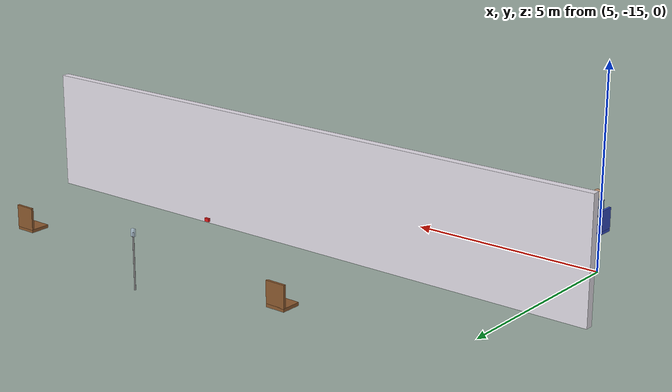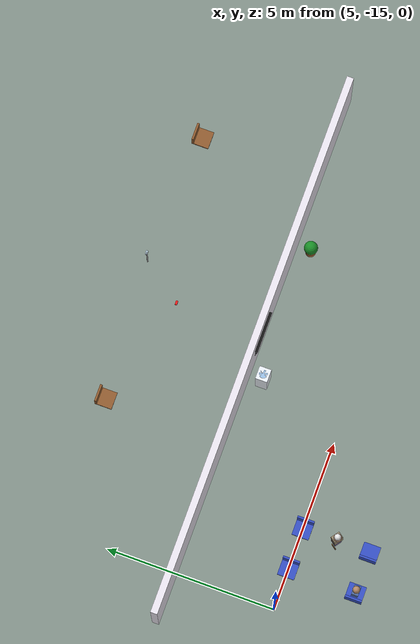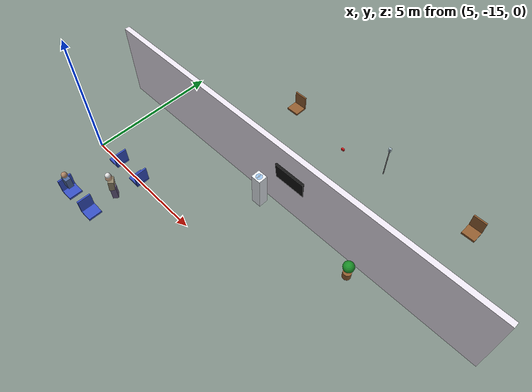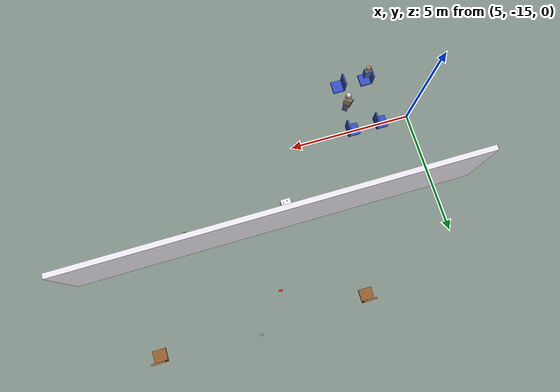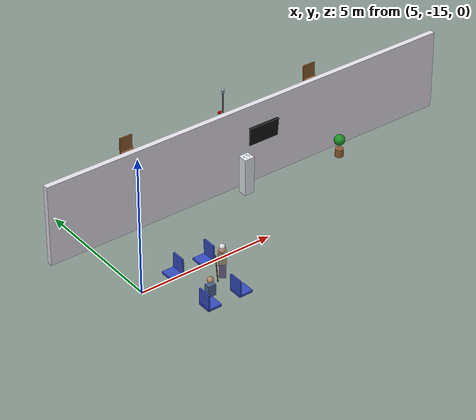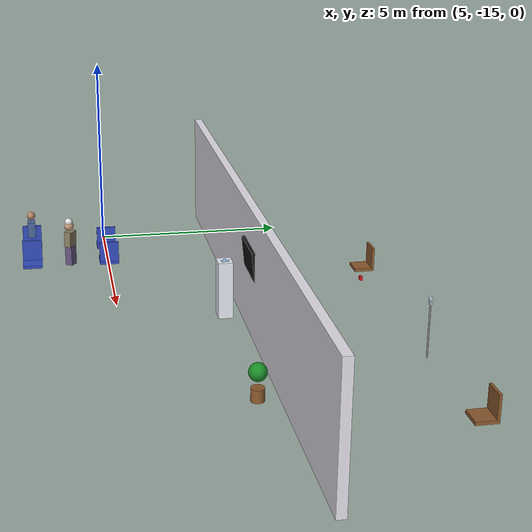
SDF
<sdf version="1.9">
 <world name="hospital">
  <model name="ch2">
   <static>true</static>
   <pose>6.2 -17 0.22 0 0 0</pose>
   <link name="l">
    <collision name="c"><geometry><box><size>0.55 0.55 0.44</size></box></geometry></collision>
    <visual name="s">
     <geometry><box><size>0.5 0.5 0.08</size></box></geometry>
     <material><ambient>0.2 0.3 0.75 1</ambient><diffuse>0.2 0.3 0.75 1</diffuse></material>
    </visual>
    <visual name="d">
     <pose>-0.22 0 0.3 0 0 0</pose>
     <geometry><box><size>0.06 0.5 0.55</size></box></geometry>
     <material><ambient>0.2 0.3 0.75 1</ambient><diffuse>0.2 0.3 0.75 1</diffuse></material>
    </visual>
   </link>
  </model>
  <model name="ch3">
   <static>true</static>
   <pose>7.4 -17 0.22 0 0 0</pose>
   <link name="l">
    <collision name="c"><geometry><box><size>0.55 0.55 0.44</size></box></geometry></collision>
    <visual name="s">
     <geometry><box><size>0.5 0.5 0.08</size></box></geometry>
     <material><ambient>0.2 0.3 0.75 1</ambient><diffuse>0.2 0.3 0.75 1</diffuse></material>
    </visual>
    <visual name="d">
     <pose>-0.22 0 0.3 0 0 0</pose>
     <geometry><box><size>0.06 0.5 0.55</size></box></geometry>
     <material><ambient>0.2 0.3 0.75 1</ambient><diffuse>0.2 0.3 0.75 1</diffuse></material>
    </visual>
   </link>
  </model>
  <model name="ch5">
   <static>true</static>
   <pose>6.2 -15 0.22 0 0 0</pose>
   <link name="l">
    <collision name="c"><geometry><box><size>0.55 0.55 0.44</size></box></geometry></collision>
    <visual name="s">
     <geometry><box><size>0.5 0.5 0.08</size></box></geometry>
     <material><ambient>0.2 0.3 0.75 1</ambient><diffuse>0.2 0.3 0.75 1</diffuse></material>
    </visual>
    <visual name="d">
     <pose>0.22 0 0.3 0 0 0</pose>
     <geometry><box><size>0.06 0.5 0.55</size></box></geometry>
     <material><ambient>0.2 0.3 0.75 1</ambient><diffuse>0.2 0.3 0.75 1</diffuse></material>
    </visual>
   </link>
  </model>
  <model name="ch6">
   <static>true</static>
   <pose>7.4 -15 0.22 0 0 0</pose>
   <link name="l">
    <collision name="c"><geometry><box><size>0.55 0.55 0.44</size></box></geometry></collision>
    <visual name="s">
     <geometry><box><size>0.5 0.5 0.08</size></box></geometry>
     <material><ambient>0.2 0.3 0.75 1</ambient><diffuse>0.2 0.3 0.75 1</diffuse></material>
    </visual>
    <visual name="d">
     <pose>0.22 0 0.3 0 0 0</pose>
     <geometry><box><size>0.06 0.5 0.55</size></box></geometry>
     <material><ambient>0.2 0.3 0.75 1</ambient><diffuse>0.2 0.3 0.75 1</diffuse></material>
    </visual>
   </link>
  </model>
  <model name="pa2">
   <static>true</static>
   <pose>6.2 -17 0.44 0 0 0</pose>
   <link name="l">
    <visual name="c">
     <pose>0 0 0.35 0 0 0</pose>
     <geometry><box><size>0.28 0.2 0.42</size></box></geometry>
     <material><ambient>0.3 0.4 0.6 1</ambient><diffuse>0.3 0.4 0.6 1</diffuse></material>
    </visual>
    <visual name="h">
     <pose>0 0 0.72 0 0 0</pose>
     <geometry><sphere><radius>0.11</radius></sphere></geometry>
     <material><ambient>0.68 0.52 0.4 1</ambient><diffuse>0.68 0.52 0.4 1</diffuse></material>
    </visual>
   </link>
  </model>
  <model name="tv_att">
   <static>true</static>
   <pose>12 -12.1 1.8 0.1 0 0</pose>
   <link name="l">
    <visual name="c">
     <geometry><box><size>1.2 0.08 0.7</size></box></geometry>
     <material><ambient>0.08 0.08 0.08 1</ambient><diffuse>0.08 0.08 0.08 1</diffuse></material>
    </visual>
    <visual name="e">
     <geometry><box><size>1.12 0.06 0.62</size></box></geometry>
     <material>
      <ambient>0.05 0.2 0.45 1</ambient>
      <diffuse>0.05 0.2 0.45 1</diffuse>
      <emissive>0.02 0.08 0.18 1</emissive>
     </material>
    </visual>
   </link>
  </model>
  <model name="elder1">
   <static>true</static>
   <pose>7.4 -16 0 0 0 2.5</pose>
   <link name="l">
    <visual name="j">
     <pose>0 0 0.42 0 0 0</pose>
     <geometry><box><size>0.22 0.2 0.52</size></box></geometry>
     <material><ambient>0.4 0.35 0.5 1</ambient><diffuse>0.4 0.35 0.5 1</diffuse></material>
    </visual>
    <visual name="t">
     <pose>0 0 0.88 0.08 0 0</pose>
     <geometry><box><size>0.28 0.19 0.42</size></box></geometry>
     <material><ambient>0.55 0.5 0.4 1</ambient><diffuse>0.55 0.5 0.4 1</diffuse></material>
    </visual>
    <visual name="h">
     <pose>0 0.02 1.22 0.1 0 0</pose>
     <geometry><sphere><radius>0.12</radius></sphere></geometry>
     <material><ambient>0.78 0.62 0.5 1</ambient><diffuse>0.78 0.62 0.5 1</diffuse></material>
    </visual>
    <visual name="cv">
     <pose>0 0.02 1.33 0.1 0 0</pose>
     <geometry><sphere><radius>0.1</radius></sphere></geometry>
     <material><ambient>0.88 0.88 0.88 1</ambient><diffuse>0.88 0.88 0.88 1</diffuse></material>
    </visual>
    <visual name="canne">
     <pose>0.18 0.12 0.55 0.1 0.08 0</pose>
     <geometry><cylinder><radius>0.018</radius><length>0.95</length></cylinder></geometry>
     <material><ambient>0.4 0.3 0.15 1</ambient><diffuse>0.4 0.3 0.15 1</diffuse></material>
    </visual>
    <collision name="c">
     <pose>0 0 0.7 0 0 0</pose>
     <geometry><box><size>0.35 0.28 1.4</size></box></geometry>
    </collision>
   </link>
  </model>
  <model name="ch_p_s">
   <static>true</static>
   <pose>11.5 -12 1.5 0 0 0</pose>
   <link name="l">
    <collision name="c"><geometry><box><size>16 0.2 3</size></box></geometry></collision>
    <visual name="v">
     <geometry><box><size>16 0.2 3</size></box></geometry>
     <material><ambient>0.9 0.88 0.92 1</ambient><diffuse>0.9 0.88 0.92 1</diffuse></material>
    </visual>
   </link>
  </model>
  <model name="chv_p1">
   <static>true</static>
   <pose>9 -8.5 0.22 0 0 1.57</pose>
   <link name="l">
    <collision name="c"><geometry><box><size>0.55 0.55 0.44</size></box></geometry></collision>
    <visual name="s">
     <geometry><box><size>0.5 0.5 0.08</size></box></geometry>
     <material><ambient>0.55 0.35 0.18 1</ambient><diffuse>0.55 0.35 0.18 1</diffuse></material>
    </visual>
    <visual name="d">
     <pose>0.22 0 0.3 0 0 0</pose>
     <geometry><box><size>0.06 0.5 0.55</size></box></geometry>
     <material><ambient>0.55 0.35 0.18 1</ambient><diffuse>0.55 0.35 0.18 1</diffuse></material>
    </visual>
   </link>
  </model>
  <model name="iv_p2">
   <static>true</static>
   <pose>13.2 -8.2 1.0 0 0 0</pose>
   <link name="l">
    <visual name="p">
     <pose>0 0 -0.7 0 0 0</pose>
     <geometry><cylinder><radius>0.02</radius><length>1.4</length></cylinder></geometry>
     <material><ambient>0.5 0.5 0.5 1</ambient><diffuse>0.5 0.5 0.5 1</diffuse></material>
    </visual>
    <visual name="s">
     <geometry><box><size>0.1 0.06 0.18</size></box></geometry>
     <material><ambient>0.8 0.9 1 0.65</ambient><diffuse>0.8 0.9 1 0.65</diffuse></material>
    </visual>
   </link>
  </model>
  <model name="chv_p2">
   <static>true</static>
   <pose>17 -8.5 0.22 0 0 1.57</pose>
   <link name="l">
    <collision name="c"><geometry><box><size>0.55 0.55 0.44</size></box></geometry></collision>
    <visual name="s">
     <geometry><box><size>0.5 0.5 0.08</size></box></geometry>
     <material><ambient>0.55 0.35 0.18 1</ambient><diffuse>0.55 0.35 0.18 1</diffuse></material>
    </visual>
    <visual name="d">
     <pose>0.22 0 0.3 0 0 0</pose>
     <geometry><box><size>0.06 0.5 0.55</size></box></geometry>
     <material><ambient>0.55 0.35 0.18 1</ambient><diffuse>0.55 0.35 0.18 1</diffuse></material>
    </visual>
   </link>
  </model>
  <model name="btn_p2">
   <static>true</static>
   <pose>12.1 -9.5 1.2 0 0 0</pose>
   <link name="l">
    <visual name="box">
     <geometry><box><size>0.12 0.06 0.08</size></box></geometry>
     <material>
      <ambient>0.9 0.1 0.1 1</ambient>
      <diffuse>0.9 0.1 0.1 1</diffuse>
      <emissive>0.3 0 0 1</emissive>
     </material>
    </visual>
   </link>
  </model>
  <model name="water_disp">
   <static>true</static>
   <pose>11 -12.5 0.7 0 0 0</pose>
   <link name="l">
    <collision name="c"><geometry><box><size>0.38 0.35 1.4</size></box></geometry></collision>
    <visual name="v">
     <geometry><box><size>0.38 0.35 1.4</size></box></geometry>
     <material><ambient>0.9 0.92 0.95 1</ambient><diffuse>0.9 0.92 0.95 1</diffuse></material>
    </visual>
    <visual name="tank">
     <pose>0 0 0.4 0 0 0</pose>
     <geometry><cylinder><radius>0.12</radius><length>0.6</length></cylinder></geometry>
     <material><ambient>0.5 0.7 0.9 0.7</ambient><diffuse>0.5 0.7 0.9 0.7</diffuse></material>
    </visual>
   </link>
  </model>
  <model name="plante3">
   <static>true</static>
   <pose>15 -12.5 0 0 0 0</pose>
   <link name="l">
    <visual name="pot">
     <geometry><cylinder><radius>0.15</radius><length>0.3</length></cylinder></geometry>
     <material><ambient>0.55 0.35 0.18 1</ambient><diffuse>0.55 0.35 0.18 1</diffuse></material>
    </visual>
    <visual name="pl1">
     <pose>0 0 0.5 0.1 0 0</pose>
     <geometry><sphere><radius>0.2</radius></sphere></geometry>
     <material><ambient>0.1 0.55 0.15 1</ambient><diffuse>0.1 0.55 0.15 1</diffuse></material>
    </visual>
   </link>
  </model>
 </world>
</sdf>
